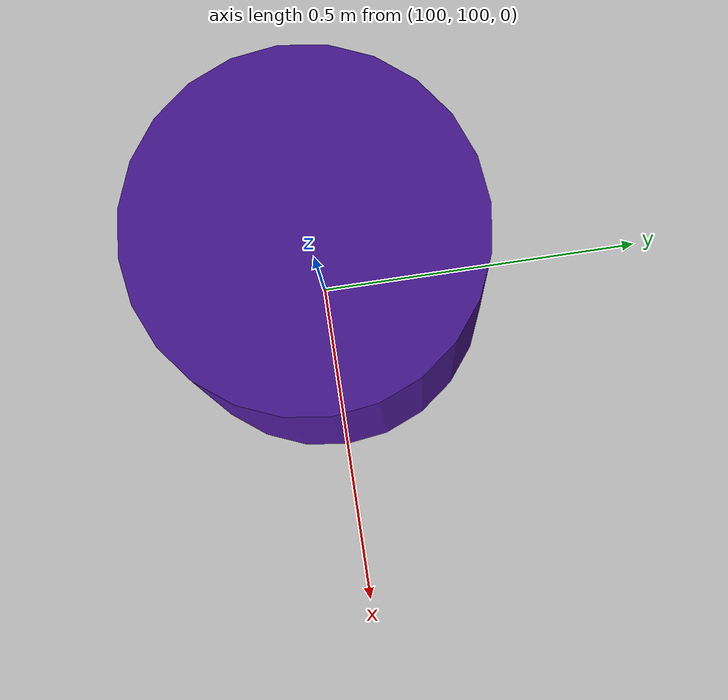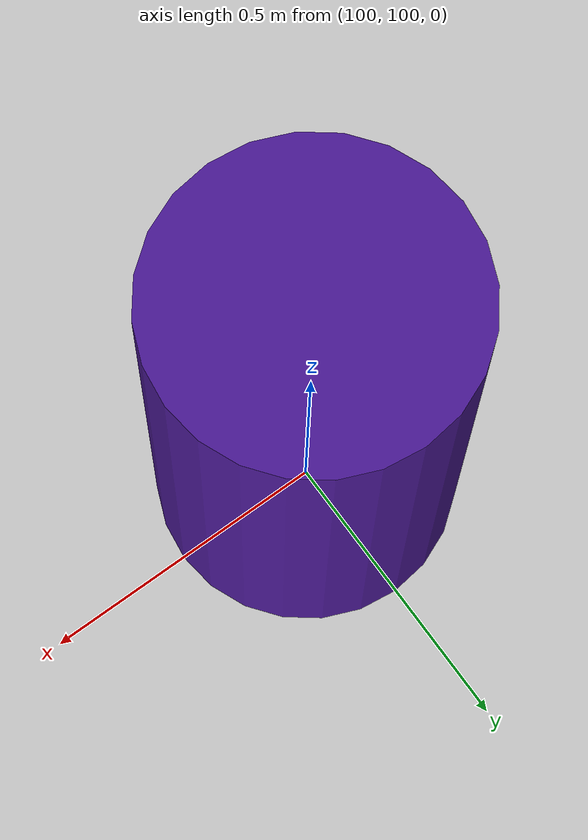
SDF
<sdf version="1.7">
 <world name="default">
  <light name="sun" type="directional">
   <pose>0 0 10 0 -0 0</pose>
   <diffuse>0.8 0.8 0.8 1</diffuse>
   <specular>0.2 0.2 0.2 1</specular>
   <attenuation>
    <range>1000</range>
    <constant>0.9</constant>
    <linear>0.01</linear>
    <quadratic>0.001</quadratic>
   </attenuation>
   <direction>-0.5 0.1 -0.9</direction>
   <spot><inner_angle>0</inner_angle><outer_angle>0</outer_angle><falloff>0</falloff></spot>
  </light>
  <model name="ground_plane">
   <static>1</static>
   <link name="link">
    <collision name="collision">
     <geometry><plane><normal>0 0 1</normal><size>100 100</size></plane></geometry>
     <surface>
      <contact><collide_bitmask>65535</collide_bitmask></contact>
      <friction><ode><mu>100</mu><mu2>50</mu2></ode></friction>
     </surface>
    </collision>
    <visual name="visual">
     <cast_shadows>0</cast_shadows>
     <geometry><plane><normal>0 0 1</normal><size>100 100</size></plane></geometry>
     <material>
      <script><uri>file://media/materials/scripts/gazebo.material</uri><name>Gazebo/Grey</name></script>
     </material>
    </visual>
   </link>
  </model>
  <gravity>0 0 -9.8</gravity>
  <magnetic_field>6e-06 2.3e-05 -4.2e-05</magnetic_field>
  <atmosphere type="adiabatic"/>
  <physics type="ode">
   <max_step_size>0.001</max_step_size>
   <real_time_factor>1</real_time_factor>
   <real_time_update_rate>1000</real_time_update_rate>
  </physics>
  <scene><ambient>0.4 0.4 0.4 1</ambient><background>0.7 0.7 0.7 1</background><shadows>1</shadows></scene>
  <spherical_coordinates>
   <surface_model>EARTH_WGS84</surface_model>
   <latitude_deg>0</latitude_deg>
   <longitude_deg>0</longitude_deg>
   <elevation>0</elevation>
   <heading_deg>0</heading_deg>
  </spherical_coordinates>
  <model name="outside_camera1">
   <link name="outside_camera1_link">
    <inertial>
     <mass>1</mass>
     <inertia>
      <ixx>0.166667</ixx>
      <ixy>0</ixy>
      <ixz>0</ixz>
      <iyy>0.166667</iyy>
      <iyz>0</iyz>
      <izz>0.166667</izz>
     </inertia>
    </inertial>
    <sensor name="outside_camera1" type="camera">
     <update_rate>30</update_rate>
     <camera name="head">
      <horizontal_fov>2</horizontal_fov>
      <image><width>640</width><height>480</height><format>R8G8B8</format></image>
      <clip><near>0.02</near><far>300</far></clip>
      <noise><type>gaussian</type><mean>0</mean><stddev>0.007</stddev></noise>
     </camera>
    </sensor>
   </link>
   <static>1</static>
   <pose>3.5 -0.5 1.25 0 -0 3.1415</pose>
  </model>
  <model name="outside_camera2">
   <link name="outside_camera2_link">
    <inertial>
     <mass>1</mass>
     <inertia>
      <ixx>0.166667</ixx>
      <ixy>0</ixy>
      <ixz>0</ixz>
      <iyy>0.166667</iyy>
      <iyz>0</iyz>
      <izz>0.166667</izz>
     </inertia>
    </inertial>
    <sensor name="outside_camera2" type="camera">
     <update_rate>30</update_rate>
     <camera name="head">
      <horizontal_fov>2</horizontal_fov>
      <image><width>640</width><height>480</height><format>R8G8B8</format></image>
      <clip><near>0.02</near><far>300</far></clip>
      <noise><type>gaussian</type><mean>0</mean><stddev>0.007</stddev></noise>
     </camera>
    </sensor>
   </link>
   <static>1</static>
   <pose>1 -0.5 3 3.14159 1.57079 3.14159</pose>
  </model>
  <model name="outside_camera3">
   <link name="outside_camera3_link">
    <inertial>
     <mass>1</mass>
     <inertia>
      <ixx>0.166667</ixx>
      <ixy>0</ixy>
      <ixz>0</ixz>
      <iyy>0.166667</iyy>
      <iyz>0</iyz>
      <izz>0.166667</izz>
     </inertia>
    </inertial>
    <sensor name="outside_camera3" type="camera">
     <update_rate>30</update_rate>
     <camera name="head">
      <horizontal_fov>2</horizontal_fov>
      <image><width>640</width><height>480</height><format>R8G8B8</format></image>
      <clip><near>0.02</near><far>300</far></clip>
      <noise><type>gaussian</type><mean>0</mean><stddev>0.007</stddev></noise>
     </camera>
    </sensor>
   </link>
   <static>1</static>
   <pose>-1 -0.5 2 0 0.5 0</pose>
  </model>
  <model name="cylinder1">
   <pose>100 100 -1 0 -0 0</pose>
   <link name="link">
    <inertial>
     <mass>1</mass>
     <inertia><ixx>0.145833</ixx><ixy>0</ixy><ixz>0</ixz><iyy>0.145833</iyy><iyz>0</iyz><izz>0.125</izz></inertia>
    </inertial>
    <visual name="visual">
     <geometry><cylinder><radius>0.16</radius><length>0.16</length></cylinder></geometry>
     <material>
      <script><name>Gazebo/Yellow</name><uri>file://media/materials/scripts/gazebo.material</uri></script>
     </material>
    </visual>
   </link>
   <static>1</static>
  </model>
  <model name="cylinder2">
   <pose>100 100 -1 0 -0 0</pose>
   <link name="link">
    <inertial>
     <mass>1</mass>
     <inertia><ixx>0.145833</ixx><ixy>0</ixy><ixz>0</ixz><iyy>0.145833</iyy><iyz>0</iyz><izz>0.125</izz></inertia>
    </inertial>
    <visual name="visual">
     <geometry><cylinder><radius>0.15</radius><length>0.34</length></cylinder></geometry>
     <material>
      <script><name>Gazebo/Green</name><uri>file://media/materials/scripts/gazebo.material</uri></script>
     </material>
    </visual>
   </link>
   <static>1</static>
  </model>
  <model name="cylinder4">
   <pose>100 100 -1 0 -0 0</pose>
   <link name="link">
    <inertial>
     <mass>1</mass>
     <inertia><ixx>0.145833</ixx><ixy>0</ixy><ixz>0</ixz><iyy>0.145833</iyy><iyz>0</iyz><izz>0.125</izz></inertia>
    </inertial>
    <visual name="visual">
     <geometry><cylinder><radius>0.13</radius><length>0.365</length></cylinder></geometry>
     <material>
      <script><name>Gazebo/Turquoise</name><uri>file://media/materials/scripts/gazebo.material</uri></script>
     </material>
    </visual>
   </link>
   <static>1</static>
  </model>
  <model name="cylinder5">
   <pose>100 100 -1 0 -0 0</pose>
   <link name="link">
    <inertial>
     <mass>1</mass>
     <inertia><ixx>0.145833</ixx><ixy>0</ixy><ixz>0</ixz><iyy>0.145833</iyy><iyz>0</iyz><izz>0.125</izz></inertia>
    </inertial>
    <visual name="visual">
     <geometry><cylinder><radius>0.13</radius><length>0.3</length></cylinder></geometry>
     <material>
      <script><name>Gazebo/Blue</name><uri>file://media/materials/scripts/gazebo.material</uri></script>
     </material>
    </visual>
   </link>
   <static>1</static>
  </model>
  <model name="dist0">
   <pose>100 100 -1 0 -0 0</pose>
   <link name="link">
    <inertial>
     <mass>1</mass>
     <inertia><ixx>0.16667</ixx><ixy>0</ixy><ixz>0</ixz><iyy>0.16667</iyy><iyz>0</iyz><izz>0.16667</izz></inertia>
    </inertial>
    <visual name="visual">
     <geometry><cylinder><radius>0.005</radius><length>1</length></cylinder></geometry>
     <material>
      <script><uri>file://media/materials/scripts/gazebo.material</uri><name>Gazebo/Yellow</name></script>
     </material>
    </visual>
   </link>
   <static>1</static>
  </model>
  <model name="dist1">
   <pose>100 100 -1 0 -0 0</pose>
   <link name="link">
    <inertial>
     <mass>1</mass>
     <inertia><ixx>0.16667</ixx><ixy>0</ixy><ixz>0</ixz><iyy>0.16667</iyy><iyz>0</iyz><izz>0.16667</izz></inertia>
    </inertial>
    <visual name="visual">
     <geometry><cylinder><radius>0.005</radius><length>1</length></cylinder></geometry>
     <material>
      <script><uri>file://media/materials/scripts/gazebo.material</uri><name>Gazebo/Green</name></script>
     </material>
    </visual>
   </link>
   <static>1</static>
  </model>
  <model name="dist2">
   <pose>100 100 -1 0 -0 0</pose>
   <link name="link">
    <inertial>
     <mass>1</mass>
     <inertia><ixx>0.16667</ixx><ixy>0</ixy><ixz>0</ixz><iyy>0.16667</iyy><iyz>0</iyz><izz>0.16667</izz></inertia>
    </inertial>
    <visual name="visual">
     <geometry><cylinder><radius>0.005</radius><length>1</length></cylinder></geometry>
     <material>
      <script><uri>file://media/materials/scripts/gazebo.material</uri><name>Gazebo/Turquoise</name></script>
     </material>
    </visual>
   </link>
   <static>1</static>
  </model>
  <model name="dist3">
   <link name="link">
    <inertial>
     <mass>1</mass>
     <inertia><ixx>0.16667</ixx><ixy>0</ixy><ixz>0</ixz><iyy>0.16667</iyy><iyz>0</iyz><izz>0.16667</izz></inertia>
    </inertial>
    <visual name="visual">
     <geometry><cylinder><radius>0.005</radius><length>1</length></cylinder></geometry>
     <material>
      <script><uri>file://media/materials/scripts/gazebo.material</uri><name>Gazebo/Blue</name></script>
     </material>
    </visual>
   </link>
   <static>1</static>
  </model>
  <model name="person_standing">
   <pose>100 100 0 3e-06 4e-06 -0</pose>
   <link name="link">
    <inertial>
     <mass>1</mass>
     <inertia><ixx>0.145833</ixx><ixy>0</ixy><ixz>0</ixz><iyy>0.145833</iyy><iyz>0</iyz><izz>0.125</izz></inertia>
    </inertial>
    <visual name="visual">
     <geometry><cylinder><radius>0.25</radius><length>1.7</length></cylinder></geometry>
     <material>
      <script><name>Gazebo/Indigo</name><uri>file://media/materials/scripts/gazebo.material</uri></script>
     </material>
    </visual>
   </link>
  </model>
 </world>
</sdf>
